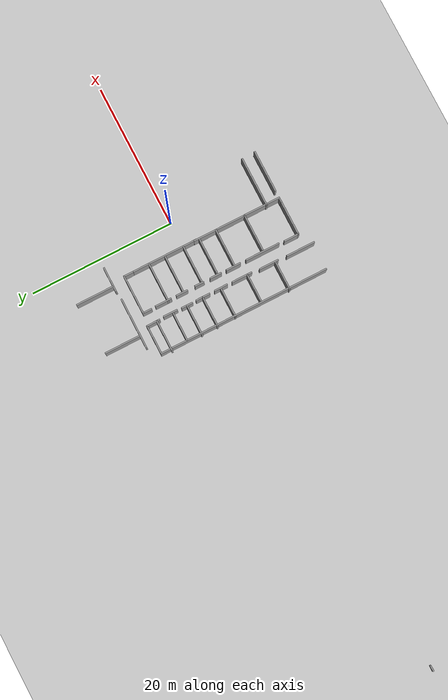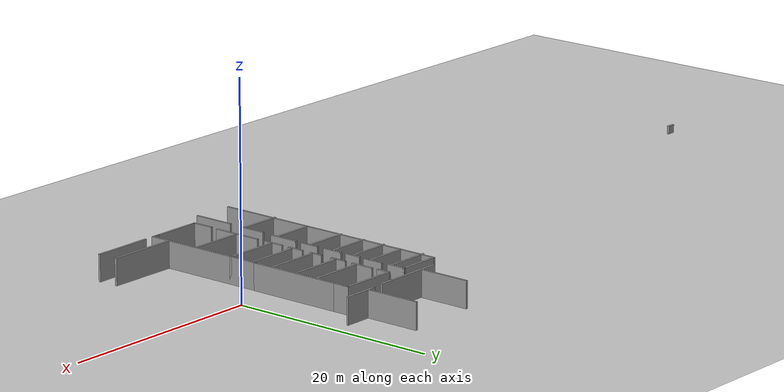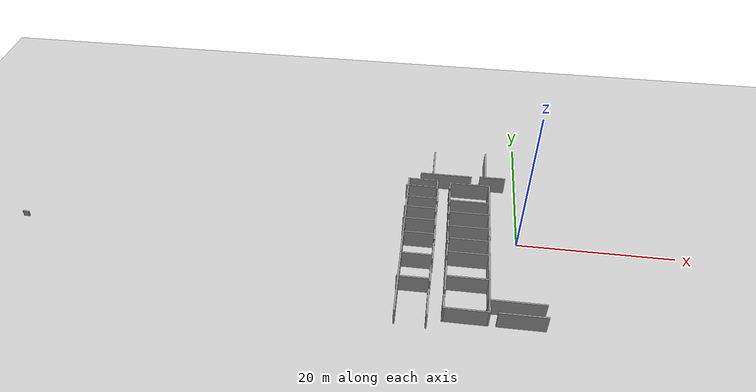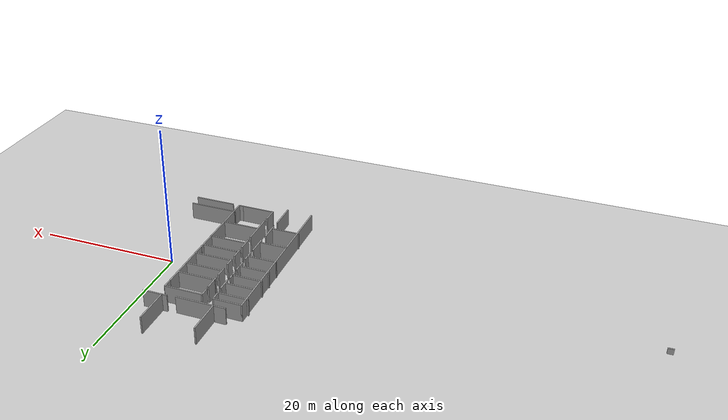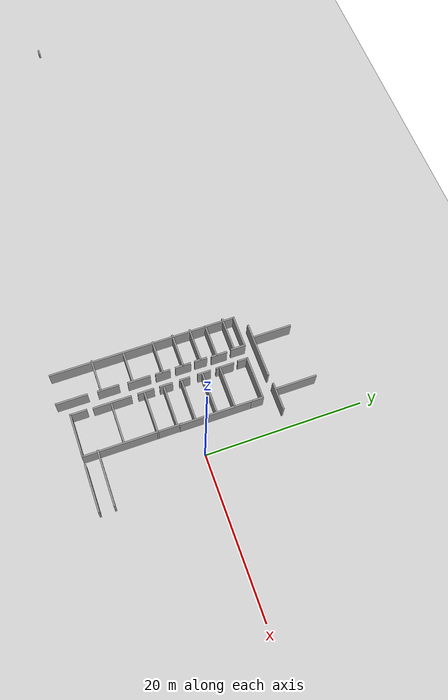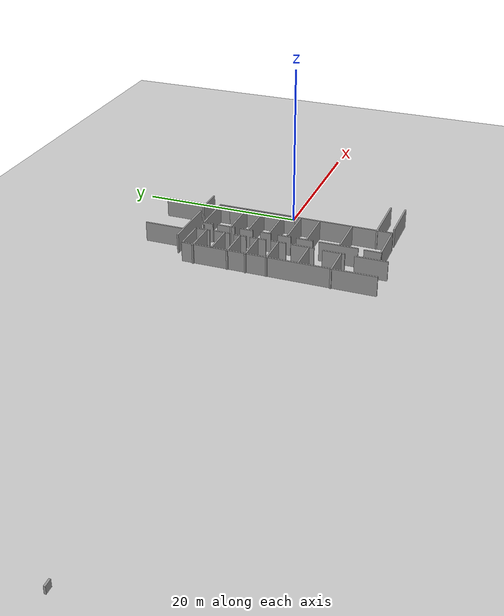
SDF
<sdf version="1.3">
 <world name="default">
  <include><uri>model://ground_plane</uri></include>
  <include><uri>model://sun</uri></include>
  <model name="Departamental">
   <link name="Wall_0">
    <collision name="Wall_0_Collision">
     <geometry><box><size>9.198170 0.200000 2.500000</size></box></geometry>
     <pose>0.000000 0.000000 1.250000 0.000000 0.000000 0.000000</pose>
    </collision>
    <visual name="Wall_0_Visual">
     <pose>0.000000 0.000000 1.250000 0.000000 0.000000 0.000000</pose>
     <geometry><box><size>9.198170 0.200000 2.500000</size></box></geometry>
     <material>
      <script><uri>file://media/materials/scripts/gazebo.material</uri><name>Gazebo/Grey</name></script>
     </material>
    </visual>
    <velocity_decay><linear>0.000000</linear><angular>0.000000</angular></velocity_decay>
    <pose>-3.791000 2.666080 0.000000 0.000000 0.000000 1.570800</pose>
   </link>
   <link name="Wall_1">
    <collision name="Wall_1_Collision">
     <geometry><box><size>1.583300 0.200000 2.500000</size></box></geometry>
     <pose>0.000000 0.000000 1.250000 0.000000 0.000000 0.000000</pose>
    </collision>
    <visual name="Wall_1_Visual">
     <pose>0.000000 0.000000 1.250000 0.000000 0.000000 0.000000</pose>
     <geometry><box><size>1.583300 0.200000 2.500000</size></box></geometry>
     <material>
      <script><uri>file://media/materials/scripts/gazebo.material</uri><name>Gazebo/Grey</name></script>
     </material>
    </visual>
    <velocity_decay><linear>0.000000</linear><angular>0.000000</angular></velocity_decay>
    <pose>-3.791000 7.856820 0.000000 0.000000 0.000000 1.570800</pose>
   </link>
   <link name="Wall_105">
    <collision name="Wall_105_Collision">
     <geometry><box><size>23.848100 0.200000 2.500000</size></box></geometry>
     <pose>0.000000 0.000000 1.250000 0.000000 0.000000 0.000000</pose>
    </collision>
    <visual name="Wall_105_Visual">
     <pose>0.000000 0.000000 1.250000 0.000000 0.000000 0.000000</pose>
     <geometry><box><size>23.848100 0.200000 2.500000</size></box></geometry>
     <material>
      <script><uri>file://media/materials/scripts/gazebo.material</uri><name>Gazebo/Grey</name></script>
     </material>
    </visual>
    <velocity_decay><linear>0.000000</linear><angular>0.000000</angular></velocity_decay>
    <pose>-14.795600 -2.966270 0.000000 0.000000 0.000000 1.570800</pose>
   </link>
   <link name="Wall_106">
    <collision name="Wall_106_Collision">
     <geometry><box><size>4.159180 0.200000 2.500000</size></box></geometry>
     <pose>0.000000 0.000000 1.250000 0.000000 0.000000 0.000000</pose>
    </collision>
    <visual name="Wall_106_Visual">
     <pose>0.000000 0.000000 1.250000 0.000000 0.000000 0.000000</pose>
     <geometry><box><size>4.159180 0.200000 2.500000</size></box></geometry>
     <material>
      <script><uri>file://media/materials/scripts/gazebo.material</uri><name>Gazebo/Grey</name></script>
     </material>
    </visual>
    <velocity_decay><linear>0.000000</linear><angular>0.000000</angular></velocity_decay>
    <pose>-12.816000 8.857780 0.000000 0.000000 0.000000 0.000000</pose>
   </link>
   <link name="Wall_107">
    <collision name="Wall_107_Collision">
     <geometry><box><size>1.912080 0.200000 2.500000</size></box></geometry>
     <pose>0.000000 0.000000 1.250000 0.000000 0.000000 0.000000</pose>
    </collision>
    <visual name="Wall_107_Visual">
     <pose>0.000000 0.000000 1.250000 0.000000 0.000000 0.000000</pose>
     <geometry><box><size>1.912080 0.200000 2.500000</size></box></geometry>
     <material>
      <script><uri>file://media/materials/scripts/gazebo.material</uri><name>Gazebo/Grey</name></script>
     </material>
    </visual>
    <velocity_decay><linear>0.000000</linear><angular>0.000000</angular></velocity_decay>
    <pose>-10.836400 8.001740 0.000000 0.000000 0.000000 -1.570800</pose>
   </link>
   <link name="Wall_109">
    <collision name="Wall_109_Collision">
     <geometry><box><size>4.373190 0.200000 2.500000</size></box></geometry>
     <pose>0.000000 0.000000 1.250000 0.000000 0.000000 0.000000</pose>
    </collision>
    <visual name="Wall_109_Visual">
     <pose>0.000000 0.000000 1.250000 0.000000 0.000000 0.000000</pose>
     <geometry><box><size>4.373190 0.200000 2.500000</size></box></geometry>
     <material>
      <script><uri>file://media/materials/scripts/gazebo.material</uri><name>Gazebo/Grey</name></script>
     </material>
    </visual>
    <velocity_decay><linear>0.000000</linear><angular>0.000000</angular></velocity_decay>
    <pose>-12.923000 7.466710 0.000000 0.000000 0.000000 3.141590</pose>
   </link>
   <link name="Wall_111">
    <collision name="Wall_111_Collision">
     <geometry><box><size>2.019090 0.200000 2.500000</size></box></geometry>
     <pose>0.000000 0.000000 1.250000 0.000000 0.000000 0.000000</pose>
    </collision>
    <visual name="Wall_111_Visual">
     <pose>0.000000 0.000000 1.250000 0.000000 0.000000 0.000000</pose>
     <geometry><box><size>2.019090 0.200000 2.500000</size></box></geometry>
     <material>
      <script><uri>file://media/materials/scripts/gazebo.material</uri><name>Gazebo/Grey</name></script>
     </material>
    </visual>
    <velocity_decay><linear>0.000000</linear><angular>0.000000</angular></velocity_decay>
    <pose>-10.729400 5.487120 0.000000 0.000000 0.000000 -1.570800</pose>
   </link>
   <link name="Wall_113">
    <collision name="Wall_113_Collision">
     <geometry><box><size>1.591060 0.200000 2.500000</size></box></geometry>
     <pose>0.000000 0.000000 1.250000 0.000000 0.000000 0.000000</pose>
    </collision>
    <visual name="Wall_113_Visual">
     <pose>0.000000 0.000000 1.250000 0.000000 0.000000 0.000000</pose>
     <geometry><box><size>1.591060 0.200000 2.500000</size></box></geometry>
     <material>
      <script><uri>file://media/materials/scripts/gazebo.material</uri><name>Gazebo/Grey</name></script>
     </material>
    </visual>
    <velocity_decay><linear>0.000000</linear><angular>0.000000</angular></velocity_decay>
    <pose>-10.808500 3.133010 0.000000 0.000000 0.000000 -1.570800</pose>
   </link>
   <link name="Wall_116">
    <collision name="Wall_116_Collision">
     <geometry><box><size>1.983990 0.200000 2.500000</size></box></geometry>
     <pose>0.000000 0.000000 1.250000 0.000000 0.000000 0.000000</pose>
    </collision>
    <visual name="Wall_116_Visual">
     <pose>0.000000 0.000000 1.250000 0.000000 0.000000 0.000000</pose>
     <geometry><box><size>1.983990 0.200000 2.500000</size></box></geometry>
     <material>
      <script><uri>file://media/materials/scripts/gazebo.material</uri><name>Gazebo/Grey</name></script>
     </material>
    </visual>
    <velocity_decay><linear>0.000000</linear><angular>0.000000</angular></velocity_decay>
    <pose>-10.784500 0.848151 0.000000 0.000000 0.000000 -1.570800</pose>
   </link>
   <link name="Wall_118">
    <collision name="Wall_118_Collision">
     <geometry><box><size>1.879050 0.200000 2.500000</size></box></geometry>
     <pose>0.000000 0.000000 1.250000 0.000000 0.000000 0.000000</pose>
    </collision>
    <visual name="Wall_118_Visual">
     <pose>0.000000 0.000000 1.250000 0.000000 0.000000 0.000000</pose>
     <geometry><box><size>1.879050 0.200000 2.500000</size></box></geometry>
     <material>
      <script><uri>file://media/materials/scripts/gazebo.material</uri><name>Gazebo/Grey</name></script>
     </material>
    </visual>
    <velocity_decay><linear>0.000000</linear><angular>0.000000</angular></velocity_decay>
    <pose>-10.761400 -1.745980 0.000000 0.000000 0.000000 -1.570800</pose>
   </link>
   <link name="Wall_120">
    <collision name="Wall_120_Collision">
     <geometry><box><size>2.858490 0.200000 2.500000</size></box></geometry>
     <pose>0.000000 0.000000 1.250000 0.000000 0.000000 0.000000</pose>
    </collision>
    <visual name="Wall_120_Visual">
     <pose>0.000000 0.000000 1.250000 0.000000 0.000000 0.000000</pose>
     <geometry><box><size>2.858490 0.200000 2.500000</size></box></geometry>
     <material>
      <script><uri>file://media/materials/scripts/gazebo.material</uri><name>Gazebo/Grey</name></script>
     </material>
    </visual>
    <velocity_decay><linear>0.000000</linear><angular>0.000000</angular></velocity_decay>
    <pose>-10.807100 -4.754270 0.000000 0.000000 0.000000 -1.570800</pose>
   </link>
   <link name="Wall_123">
    <collision name="Wall_123_Collision">
     <geometry><box><size>2.708250 0.200000 2.500000</size></box></geometry>
     <pose>0.000000 0.000000 1.250000 0.000000 0.000000 0.000000</pose>
    </collision>
    <visual name="Wall_123_Visual">
     <pose>0.000000 0.000000 1.250000 0.000000 0.000000 0.000000</pose>
     <geometry><box><size>2.708250 0.200000 2.500000</size></box></geometry>
     <material>
      <script><uri>file://media/materials/scripts/gazebo.material</uri><name>Gazebo/Grey</name></script>
     </material>
    </visual>
    <velocity_decay><linear>0.000000</linear><angular>0.000000</angular></velocity_decay>
    <pose>-10.928100 -8.587930 0.000000 0.000000 0.000000 -1.570800</pose>
   </link>
   <link name="Wall_125">
    <collision name="Wall_125_Collision">
     <geometry><box><size>3.998590 0.200000 2.500000</size></box></geometry>
     <pose>0.000000 0.000000 1.250000 0.000000 0.000000 0.000000</pose>
    </collision>
    <visual name="Wall_125_Visual">
     <pose>0.000000 0.000000 1.250000 0.000000 0.000000 0.000000</pose>
     <geometry><box><size>3.998590 0.200000 2.500000</size></box></geometry>
     <material>
      <script><uri>file://media/materials/scripts/gazebo.material</uri><name>Gazebo/Grey</name></script>
     </material>
    </visual>
    <velocity_decay><linear>0.000000</linear><angular>0.000000</angular></velocity_decay>
    <pose>-11.009000 -13.116800 0.000000 0.000000 0.000000 -1.570800</pose>
   </link>
   <link name="Wall_128">
    <collision name="Wall_128_Collision">
     <geometry><box><size>4.245560 0.200000 2.500000</size></box></geometry>
     <pose>0.000000 0.000000 1.250000 0.000000 0.000000 0.000000</pose>
    </collision>
    <visual name="Wall_128_Visual">
     <pose>0.000000 0.000000 1.250000 0.000000 0.000000 0.000000</pose>
     <geometry><box><size>4.245560 0.200000 2.500000</size></box></geometry>
     <material>
      <script><uri>file://media/materials/scripts/gazebo.material</uri><name>Gazebo/Grey</name></script>
     </material>
    </visual>
    <velocity_decay><linear>0.000000</linear><angular>0.000000</angular></velocity_decay>
    <pose>-12.761600 5.161100 0.000000 0.000000 0.000000 3.141590</pose>
   </link>
   <link name="Wall_130">
    <collision name="Wall_130_Collision">
     <geometry><box><size>4.245560 0.200000 2.500000</size></box></geometry>
     <pose>0.000000 0.000000 1.250000 0.000000 0.000000 0.000000</pose>
    </collision>
    <visual name="Wall_130_Visual">
     <pose>0.000000 0.000000 1.250000 0.000000 0.000000 0.000000</pose>
     <geometry><box><size>4.245560 0.200000 2.500000</size></box></geometry>
     <material>
      <script><uri>file://media/materials/scripts/gazebo.material</uri><name>Gazebo/Grey</name></script>
     </material>
    </visual>
    <velocity_decay><linear>0.000000</linear><angular>0.000000</angular></velocity_decay>
    <pose>-12.923400 3.138330 0.000000 0.000000 0.000000 3.141590</pose>
   </link>
   <link name="Wall_132">
    <collision name="Wall_132_Collision">
     <geometry><box><size>4.326470 0.200000 2.500000</size></box></geometry>
     <pose>0.000000 0.000000 1.250000 0.000000 0.000000 0.000000</pose>
    </collision>
    <visual name="Wall_132_Visual">
     <pose>0.000000 0.000000 1.250000 0.000000 0.000000 0.000000</pose>
     <geometry><box><size>4.326470 0.200000 2.500000</size></box></geometry>
     <material>
      <script><uri>file://media/materials/scripts/gazebo.material</uri><name>Gazebo/Grey</name></script>
     </material>
    </visual>
    <velocity_decay><linear>0.000000</linear><angular>0.000000</angular></velocity_decay>
    <pose>-12.883000 0.872812 0.000000 0.000000 0.000000 3.141590</pose>
   </link>
   <link name="Wall_134">
    <collision name="Wall_134_Collision">
     <geometry><box><size>4.245560 0.200000 2.500000</size></box></geometry>
     <pose>0.000000 0.000000 1.250000 0.000000 0.000000 0.000000</pose>
    </collision>
    <visual name="Wall_134_Visual">
     <pose>0.000000 0.000000 1.250000 0.000000 0.000000 0.000000</pose>
     <geometry><box><size>4.245560 0.200000 2.500000</size></box></geometry>
     <material>
      <script><uri>file://media/materials/scripts/gazebo.material</uri><name>Gazebo/Grey</name></script>
     </material>
    </visual>
    <velocity_decay><linear>0.000000</linear><angular>0.000000</angular></velocity_decay>
    <pose>-12.842500 -1.716340 0.000000 0.000000 0.000000 3.141590</pose>
   </link>
   <link name="Wall_136">
    <collision name="Wall_136_Collision">
     <geometry><box><size>4.083730 0.200000 2.500000</size></box></geometry>
     <pose>0.000000 0.000000 1.250000 0.000000 0.000000 0.000000</pose>
    </collision>
    <visual name="Wall_136_Visual">
     <pose>0.000000 0.000000 1.250000 0.000000 0.000000 0.000000</pose>
     <geometry><box><size>4.083730 0.200000 2.500000</size></box></geometry>
     <material>
      <script><uri>file://media/materials/scripts/gazebo.material</uri><name>Gazebo/Grey</name></script>
     </material>
    </visual>
    <velocity_decay><linear>0.000000</linear><angular>0.000000</angular></velocity_decay>
    <pose>-12.842500 -5.519170 0.000000 0.000000 0.000000 3.141590</pose>
   </link>
   <link name="Wall_138">
    <collision name="Wall_138_Collision">
     <geometry><box><size>4.083730 0.200000 2.500000</size></box></geometry>
     <pose>0.000000 0.000000 1.250000 0.000000 0.000000 0.000000</pose>
    </collision>
    <visual name="Wall_138_Visual">
     <pose>0.000000 0.000000 1.250000 0.000000 0.000000 0.000000</pose>
     <geometry><box><size>4.083730 0.200000 2.500000</size></box></geometry>
     <material>
      <script><uri>file://media/materials/scripts/gazebo.material</uri><name>Gazebo/Grey</name></script>
     </material>
    </visual>
    <velocity_decay><linear>0.000000</linear><angular>0.000000</angular></velocity_decay>
    <pose>-13.004300 -9.483810 0.000000 0.000000 0.000000 3.141590</pose>
   </link>
   <link name="Wall_140">
    <collision name="Wall_140_Collision">
     <geometry><box><size>4.950490 0.200000 2.500000</size></box></geometry>
     <pose>0.000000 0.000000 1.250000 0.000000 0.000000 0.000000</pose>
    </collision>
    <visual name="Wall_140_Visual">
     <pose>0.000000 0.000000 1.250000 0.000000 0.000000 0.000000</pose>
     <geometry><box><size>4.950490 0.200000 2.500000</size></box></geometry>
     <material>
      <script><uri>file://media/materials/scripts/gazebo.material</uri><name>Gazebo/Grey</name></script>
     </material>
    </visual>
    <velocity_decay><linear>0.000000</linear><angular>0.000000</angular></velocity_decay>
    <pose>-11.505900 12.731000 0.000000 0.000000 0.000000 1.570800</pose>
   </link>
   <link name="Wall_158">
    <collision name="Wall_158_Collision">
     <geometry><box><size>5.245290 0.200000 2.500000</size></box></geometry>
     <pose>0.000000 0.000000 1.250000 0.000000 0.000000 0.000000</pose>
    </collision>
    <visual name="Wall_158_Visual">
     <pose>0.000000 0.000000 1.250000 0.000000 0.000000 0.000000</pose>
     <geometry><box><size>5.245290 0.200000 2.500000</size></box></geometry>
     <material>
      <script><uri>file://media/materials/scripts/gazebo.material</uri><name>Gazebo/Grey</name></script>
     </material>
    </visual>
    <velocity_decay><linear>0.000000</linear><angular>0.000000</angular></velocity_decay>
    <pose>-4.298480 13.037300 0.000000 0.000000 0.000000 1.570800</pose>
   </link>
   <link name="Wall_21">
    <collision name="Wall_21_Collision">
     <geometry><box><size>5.863780 0.200000 2.500000</size></box></geometry>
     <pose>0.000000 0.000000 1.250000 0.000000 0.000000 0.000000</pose>
    </collision>
    <visual name="Wall_21_Visual">
     <pose>0.000000 0.000000 1.250000 0.000000 0.000000 0.000000</pose>
     <geometry><box><size>5.863780 0.200000 2.500000</size></box></geometry>
     <material>
      <script><uri>file://media/materials/scripts/gazebo.material</uri><name>Gazebo/Grey</name></script>
     </material>
    </visual>
    <velocity_decay><linear>0.000000</linear><angular>0.000000</angular></velocity_decay>
    <pose>0.061691 -13.767400 0.000000 0.000000 0.000000 3.141590</pose>
   </link>
   <link name="Wall_24">
    <collision name="Wall_24_Collision">
     <geometry><box><size>0.766378 0.200000 2.500000</size></box></geometry>
     <pose>0.000000 0.000000 1.250000 0.000000 0.000000 0.000000</pose>
    </collision>
    <visual name="Wall_24_Visual">
     <pose>0.000000 0.000000 1.250000 0.000000 0.000000 0.000000</pose>
     <geometry><box><size>0.766378 0.200000 2.500000</size></box></geometry>
     <material>
      <script><uri>file://media/materials/scripts/gazebo.material</uri><name>Gazebo/Grey</name></script>
     </material>
    </visual>
    <velocity_decay><linear>0.000000</linear><angular>0.000000</angular></velocity_decay>
    <pose>-4.105230 -13.767400 0.000000 0.000000 0.000000 0.000000</pose>
   </link>
   <link name="Wall_25">
    <collision name="Wall_25_Collision">
     <geometry><box><size>5.540140 0.200000 2.500000</size></box></geometry>
     <pose>0.000000 0.000000 1.250000 0.000000 0.000000 0.000000</pose>
    </collision>
    <visual name="Wall_25_Visual">
     <pose>0.000000 0.000000 1.250000 0.000000 0.000000 0.000000</pose>
     <geometry><box><size>5.540140 0.200000 2.500000</size></box></geometry>
     <material>
      <script><uri>file://media/materials/scripts/gazebo.material</uri><name>Gazebo/Grey</name></script>
     </material>
    </visual>
    <velocity_decay><linear>0.000000</linear><angular>0.000000</angular></velocity_decay>
    <pose>-6.492110 -13.767400 0.000000 0.000000 0.000000 3.141590</pose>
   </link>
   <link name="Wall_26">
    <collision name="Wall_26_Collision">
     <geometry><box><size>2.141870 0.200000 2.500000</size></box></geometry>
     <pose>0.000000 0.000000 1.250000 0.000000 0.000000 0.000000</pose>
    </collision>
    <visual name="Wall_26_Visual">
     <pose>0.000000 0.000000 1.250000 0.000000 0.000000 0.000000</pose>
     <geometry><box><size>2.141870 0.200000 2.500000</size></box></geometry>
     <material>
      <script><uri>file://media/materials/scripts/gazebo.material</uri><name>Gazebo/Grey</name></script>
     </material>
    </visual>
    <velocity_decay><linear>0.000000</linear><angular>0.000000</angular></velocity_decay>
    <pose>-9.162180 -12.796500 0.000000 0.000000 0.000000 1.570800</pose>
   </link>
   <link name="Wall_28">
    <collision name="Wall_28_Collision">
     <geometry><box><size>12.417600 0.200000 2.500000</size></box></geometry>
     <pose>0.000000 0.000000 1.250000 0.000000 0.000000 0.000000</pose>
    </collision>
    <visual name="Wall_28_Visual">
     <pose>0.000000 0.000000 1.250000 0.000000 0.000000 0.000000</pose>
     <geometry><box><size>12.417600 0.200000 2.500000</size></box></geometry>
     <material>
      <script><uri>file://media/materials/scripts/gazebo.material</uri><name>Gazebo/Grey</name></script>
     </material>
    </visual>
    <velocity_decay><linear>0.000000</linear><angular>0.000000</angular></velocity_decay>
    <pose>-3.822050 -7.658640 0.000000 0.000000 0.000000 1.570800</pose>
   </link>
   <link name="Wall_30">
    <collision name="Wall_30_Collision">
     <geometry><box><size>4.811940 0.200000 2.500000</size></box></geometry>
     <pose>0.000000 0.000000 1.250000 0.000000 0.000000 0.000000</pose>
    </collision>
    <visual name="Wall_30_Visual">
     <pose>0.000000 0.000000 1.250000 0.000000 0.000000 0.000000</pose>
     <geometry><box><size>4.811940 0.200000 2.500000</size></box></geometry>
     <material>
      <script><uri>file://media/materials/scripts/gazebo.material</uri><name>Gazebo/Grey</name></script>
     </material>
    </visual>
    <velocity_decay><linear>0.000000</linear><angular>0.000000</angular></velocity_decay>
    <pose>-9.081270 -8.629570 0.000000 0.000000 0.000000 1.570800</pose>
   </link>
   <link name="Wall_32">
    <collision name="Wall_32_Collision">
     <geometry><box><size>2.060960 0.200000 2.500000</size></box></geometry>
     <pose>0.000000 0.000000 1.250000 0.000000 0.000000 0.000000</pose>
    </collision>
    <visual name="Wall_32_Visual">
     <pose>0.000000 0.000000 1.250000 0.000000 0.000000 0.000000</pose>
     <geometry><box><size>2.060960 0.200000 2.500000</size></box></geometry>
     <material>
      <script><uri>file://media/materials/scripts/gazebo.material</uri><name>Gazebo/Grey</name></script>
     </material>
    </visual>
    <velocity_decay><linear>0.000000</linear><angular>0.000000</angular></velocity_decay>
    <pose>-9.081270 -4.422190 0.000000 0.000000 0.000000 1.570800</pose>
   </link>
   <link name="Wall_34">
    <collision name="Wall_34_Collision">
     <geometry><box><size>1.656400 0.200000 2.500000</size></box></geometry>
     <pose>0.000000 0.000000 1.250000 0.000000 0.000000 0.000000</pose>
    </collision>
    <visual name="Wall_34_Visual">
     <pose>0.000000 0.000000 1.250000 0.000000 0.000000 0.000000</pose>
     <geometry><box><size>1.656400 0.200000 2.500000</size></box></geometry>
     <material>
      <script><uri>file://media/materials/scripts/gazebo.material</uri><name>Gazebo/Grey</name></script>
     </material>
    </visual>
    <velocity_decay><linear>0.000000</linear><angular>0.000000</angular></velocity_decay>
    <pose>-9.081270 -1.873490 0.000000 0.000000 0.000000 1.570800</pose>
   </link>
   <link name="Wall_37">
    <collision name="Wall_37_Collision">
     <geometry><box><size>1.332760 0.200000 2.500000</size></box></geometry>
     <pose>0.000000 0.000000 1.250000 0.000000 0.000000 0.000000</pose>
    </collision>
    <visual name="Wall_37_Visual">
     <pose>0.000000 0.000000 1.250000 0.000000 0.000000 0.000000</pose>
     <geometry><box><size>1.332760 0.200000 2.500000</size></box></geometry>
     <material>
      <script><uri>file://media/materials/scripts/gazebo.material</uri><name>Gazebo/Grey</name></script>
     </material>
    </visual>
    <velocity_decay><linear>0.000000</linear><angular>0.000000</angular></velocity_decay>
    <pose>-9.081270 0.472932 0.000000 0.000000 0.000000 1.570800</pose>
   </link>
   <link name="Wall_39">
    <collision name="Wall_39_Collision">
     <geometry><box><size>1.656400 0.200000 2.500000</size></box></geometry>
     <pose>0.000000 0.000000 1.250000 0.000000 0.000000 0.000000</pose>
    </collision>
    <visual name="Wall_39_Visual">
     <pose>0.000000 0.000000 1.250000 0.000000 0.000000 0.000000</pose>
     <geometry><box><size>1.656400 0.200000 2.500000</size></box></geometry>
     <material>
      <script><uri>file://media/materials/scripts/gazebo.material</uri><name>Gazebo/Grey</name></script>
     </material>
    </visual>
    <velocity_decay><linear>0.000000</linear><angular>0.000000</angular></velocity_decay>
    <pose>-9.081270 2.981180 0.000000 0.000000 0.000000 1.570800</pose>
   </link>
   <link name="Wall_41">
    <collision name="Wall_41_Collision">
     <geometry><box><size>2.305170 0.200000 2.500000</size></box></geometry>
     <pose>0.000000 0.000000 1.250000 0.000000 0.000000 0.000000</pose>
    </collision>
    <visual name="Wall_41_Visual">
     <pose>0.000000 0.000000 1.250000 0.000000 0.000000 0.000000</pose>
     <geometry><box><size>2.305170 0.200000 2.500000</size></box></geometry>
     <material>
      <script><uri>file://media/materials/scripts/gazebo.material</uri><name>Gazebo/Grey</name></script>
     </material>
    </visual>
    <velocity_decay><linear>0.000000</linear><angular>0.000000</angular></velocity_decay>
    <pose>-9.081000 5.650420 0.000000 0.000000 0.000000 1.570800</pose>
   </link>
   <link name="Wall_45">
    <collision name="Wall_45_Collision">
     <geometry><box><size>5.378310 0.200000 2.500000</size></box></geometry>
     <pose>0.000000 0.000000 1.250000 0.000000 0.000000 0.000000</pose>
    </collision>
    <visual name="Wall_45_Visual">
     <pose>0.000000 0.000000 1.250000 0.000000 0.000000 0.000000</pose>
     <geometry><box><size>5.378310 0.200000 2.500000</size></box></geometry>
     <material>
      <script><uri>file://media/materials/scripts/gazebo.material</uri><name>Gazebo/Grey</name></script>
     </material>
    </visual>
    <velocity_decay><linear>0.000000</linear><angular>0.000000</angular></velocity_decay>
    <pose>-6.492110 5.003960 0.000000 0.000000 0.000000 0.000000</pose>
   </link>
   <link name="Wall_47">
    <collision name="Wall_47_Collision">
     <geometry><box><size>5.216490 0.200000 2.500000</size></box></geometry>
     <pose>0.000000 0.000000 1.250000 0.000000 0.000000 0.000000</pose>
    </collision>
    <visual name="Wall_47_Visual">
     <pose>0.000000 0.000000 1.250000 0.000000 0.000000 0.000000</pose>
     <geometry><box><size>5.216490 0.200000 2.500000</size></box></geometry>
     <material>
      <script><uri>file://media/materials/scripts/gazebo.material</uri><name>Gazebo/Grey</name></script>
     </material>
    </visual>
    <velocity_decay><linear>0.000000</linear><angular>0.000000</angular></velocity_decay>
    <pose>-6.411200 2.738450 0.000000 0.000000 0.000000 0.000000</pose>
   </link>
   <link name="Wall_49">
    <collision name="Wall_49_Collision">
     <geometry><box><size>5.216490 0.200000 2.500000</size></box></geometry>
     <pose>0.000000 0.000000 1.250000 0.000000 0.000000 0.000000</pose>
    </collision>
    <visual name="Wall_49_Visual">
     <pose>0.000000 0.000000 1.250000 0.000000 0.000000 0.000000</pose>
     <geometry><box><size>5.216490 0.200000 2.500000</size></box></geometry>
     <material>
      <script><uri>file://media/materials/scripts/gazebo.material</uri><name>Gazebo/Grey</name></script>
     </material>
    </visual>
    <velocity_decay><linear>0.000000</linear><angular>0.000000</angular></velocity_decay>
    <pose>-6.411200 0.068377 0.000000 0.000000 0.000000 0.000000</pose>
   </link>
   <link name="Wall_51">
    <collision name="Wall_51_Collision">
     <geometry><box><size>4.973760 0.200000 2.500000</size></box></geometry>
     <pose>0.000000 0.000000 1.250000 0.000000 0.000000 0.000000</pose>
    </collision>
    <visual name="Wall_51_Visual">
     <pose>0.000000 0.000000 1.250000 0.000000 0.000000 0.000000</pose>
     <geometry><box><size>4.973760 0.200000 2.500000</size></box></geometry>
     <material>
      <script><uri>file://media/materials/scripts/gazebo.material</uri><name>Gazebo/Grey</name></script>
     </material>
    </visual>
    <velocity_decay><linear>0.000000</linear><angular>0.000000</angular></velocity_decay>
    <pose>-6.370750 -2.197140 0.000000 0.000000 0.000000 0.000000</pose>
   </link>
   <link name="Wall_53">
    <collision name="Wall_53_Collision">
     <geometry><box><size>5.297400 0.200000 2.500000</size></box></geometry>
     <pose>0.000000 0.000000 1.250000 0.000000 0.000000 0.000000</pose>
    </collision>
    <visual name="Wall_53_Visual">
     <pose>0.000000 0.000000 1.250000 0.000000 0.000000 0.000000</pose>
     <geometry><box><size>5.297400 0.200000 2.500000</size></box></geometry>
     <material>
      <script><uri>file://media/materials/scripts/gazebo.material</uri><name>Gazebo/Grey</name></script>
     </material>
    </visual>
    <velocity_decay><linear>0.000000</linear><angular>0.000000</angular></velocity_decay>
    <pose>-6.370750 -4.624470 0.000000 0.000000 0.000000 0.000000</pose>
   </link>
   <link name="Wall_55">
    <collision name="Wall_55_Collision">
     <geometry><box><size>5.135580 0.200000 2.500000</size></box></geometry>
     <pose>0.000000 0.000000 1.250000 0.000000 0.000000 0.000000</pose>
    </collision>
    <visual name="Wall_55_Visual">
     <pose>0.000000 0.000000 1.250000 0.000000 0.000000 0.000000</pose>
     <geometry><box><size>5.135580 0.200000 2.500000</size></box></geometry>
     <material>
      <script><uri>file://media/materials/scripts/gazebo.material</uri><name>Gazebo/Grey</name></script>
     </material>
    </visual>
    <velocity_decay><linear>0.000000</linear><angular>0.000000</angular></velocity_decay>
    <pose>-6.370750 -8.750940 0.000000 0.000000 0.000000 0.000000</pose>
   </link>
   <link name="Wall_57">
    <collision name="Wall_57_Collision">
     <geometry><box><size>6.915630 0.200000 2.500000</size></box></geometry>
     <pose>0.000000 0.000000 1.250000 0.000000 0.000000 0.000000</pose>
    </collision>
    <visual name="Wall_57_Visual">
     <pose>0.000000 0.000000 1.250000 0.000000 0.000000 0.000000</pose>
     <geometry><box><size>6.915630 0.200000 2.500000</size></box></geometry>
     <material>
      <script><uri>file://media/materials/scripts/gazebo.material</uri><name>Gazebo/Grey</name></script>
     </material>
    </visual>
    <velocity_decay><linear>0.000000</linear><angular>0.000000</angular></velocity_decay>
    <pose>-0.545143 -11.906500 0.000000 0.000000 0.000000 0.000000</pose>
   </link>
   <link name="Wall_59">
    <collision name="Wall_59_Collision">
     <geometry><box><size>5.476810 0.200000 2.500000</size></box></geometry>
     <pose>0.000000 0.000000 1.250000 0.000000 0.000000 0.000000</pose>
    </collision>
    <visual name="Wall_59_Visual">
     <pose>0.000000 0.000000 1.250000 0.000000 0.000000 0.000000</pose>
     <geometry><box><size>5.476810 0.200000 2.500000</size></box></geometry>
     <material>
      <script><uri>file://media/materials/scripts/gazebo.material</uri><name>Gazebo/Grey</name></script>
     </material>
    </visual>
    <velocity_decay><linear>0.000000</linear><angular>0.000000</angular></velocity_decay>
    <pose>-6.480160 8.553840 0.000000 0.000000 0.000000 3.141590</pose>
   </link>
   <link name="Wall_60">
    <collision name="Wall_60_Collision">
     <geometry><box><size>1.327920 0.200000 2.500000</size></box></geometry>
     <pose>0.000000 0.000000 1.250000 0.000000 0.000000 0.000000</pose>
    </collision>
    <visual name="Wall_60_Visual">
     <pose>0.000000 0.000000 1.250000 0.000000 0.000000 0.000000</pose>
     <geometry><box><size>1.327920 0.200000 2.500000</size></box></geometry>
     <material>
      <script><uri>file://media/materials/scripts/gazebo.material</uri><name>Gazebo/Grey</name></script>
     </material>
    </visual>
    <velocity_decay><linear>0.000000</linear><angular>0.000000</angular></velocity_decay>
    <pose>-9.118570 7.989890 0.000000 0.000000 0.000000 -1.570800</pose>
   </link>
   <link name="Wall_93">
    <collision name="Wall_93_Collision">
     <geometry><box><size>7.035130 0.200000 2.500000</size></box></geometry>
     <pose>0.000000 0.000000 1.250000 0.000000 0.000000 0.000000</pose>
    </collision>
    <visual name="Wall_93_Visual">
     <pose>0.000000 0.000000 1.250000 0.000000 0.000000 0.000000</pose>
     <geometry><box><size>7.035130 0.200000 2.500000</size></box></geometry>
     <material>
      <script><uri>file://media/materials/scripts/gazebo.material</uri><name>Gazebo/Grey</name></script>
     </material>
    </visual>
    <velocity_decay><linear>0.000000</linear><angular>0.000000</angular></velocity_decay>
    <pose>-9.740420 10.204800 0.000000 0.000000 0.000000 0.000000</pose>
   </link>
   <link name="Wall_95">
    <collision name="Wall_95_Collision">
     <geometry><box><size>3.473730 0.200000 2.500000</size></box></geometry>
     <pose>0.000000 0.000000 1.250000 0.000000 0.000000 0.000000</pose>
    </collision>
    <visual name="Wall_95_Visual">
     <pose>0.000000 0.000000 1.250000 0.000000 0.000000 0.000000</pose>
     <geometry><box><size>3.473730 0.200000 2.500000</size></box></geometry>
     <material>
      <script><uri>file://media/materials/scripts/gazebo.material</uri><name>Gazebo/Grey</name></script>
     </material>
    </visual>
    <velocity_decay><linear>0.000000</linear><angular>0.000000</angular></velocity_decay>
    <pose>-3.337730 10.367500 0.000000 0.000000 0.000000 0.000000</pose>
   </link>
   <link name="Window_0">
    <collision name="Window_0_Collision">
     <geometry><box><size>0.800000 0.200000 0.800000</size></box></geometry>
     <pose>0.000000 0.000000 0.400000 0.000000 0.000000 0.000000</pose>
    </collision>
    <visual name="Window_0_Visual">
     <pose>0.000000 0.000000 0.400000 0.000000 0.000000 0.000000</pose>
     <geometry><box><size>0.800000 0.200000 0.800000</size></box></geometry>
     <material>
      <script><uri>file://media/materials/scripts/gazebo.material</uri><name>Gazebo/Grey</name></script>
     </material>
    </visual>
    <velocity_decay><linear>0.000000</linear><angular>0.000000</angular></velocity_decay>
    <pose>-65.557300 -3.168070 0.500000 0.000000 0.000000 0.000000</pose>
   </link>
   <static>1</static>
  </model>
 </world>
</sdf>
